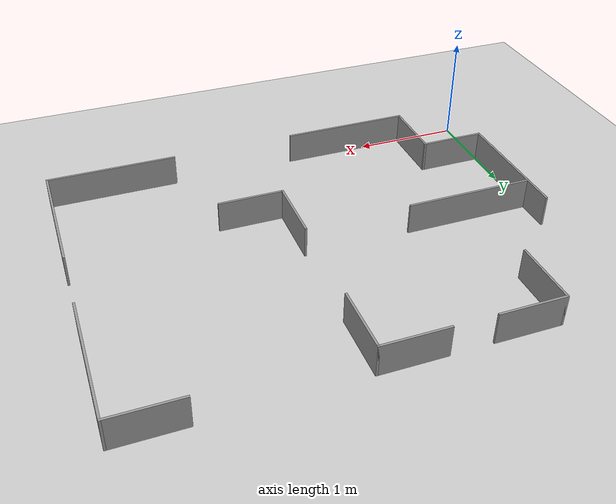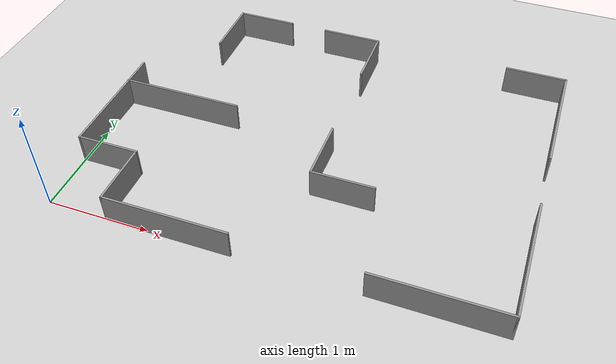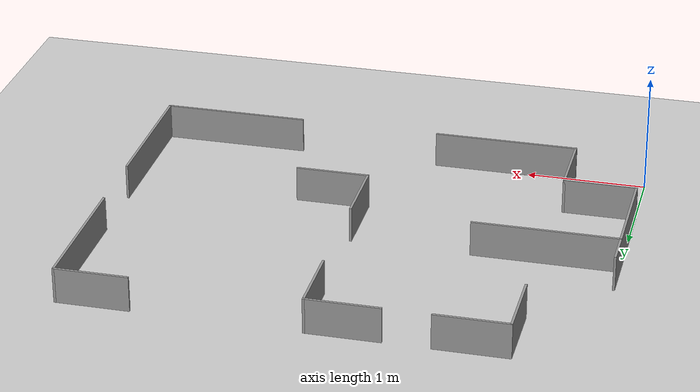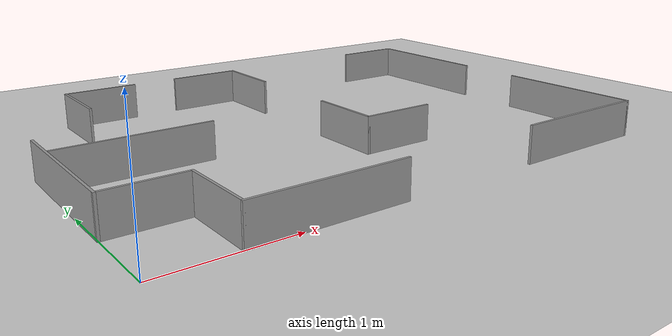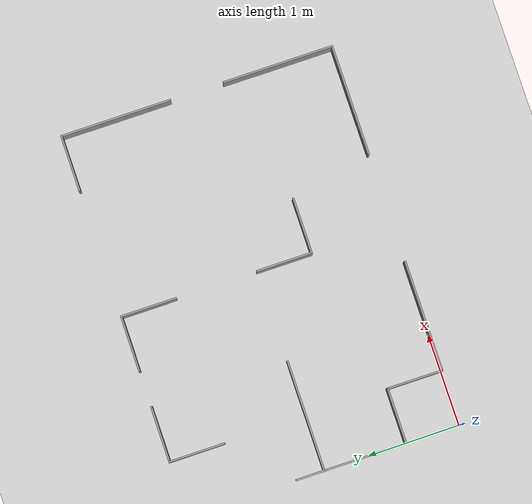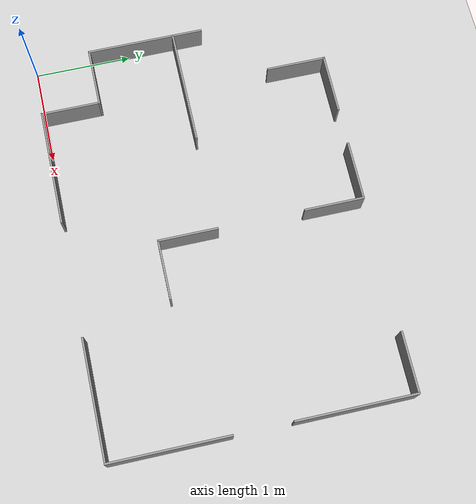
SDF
<sdf version="1.4">
  <world name="default">

    <scene>
      <ambient>0.4 0.4 0.4 1</ambient>
      <background>0.7 0.7 0.7 1</background>
      <shadows>true</shadows>
    </scene>

    <!-- A global light source -->
    <include>
      <uri>model://sun</uri>
    </include>

    <!-- A ground plane -->
    <include>
      <uri>model://ground_plane</uri>
    </include>

    <!-- project map -->
    <include>
      <uri>model://project_map</uri>
    </include>

    <physics type="ode">
      <real_time_update_rate>1000.0</real_time_update_rate>
      <max_step_size>0.001</max_step_size>
      <real_time_factor>1</real_time_factor>
      <ode>
        <solver>
          <type>quick</type>
          <iters>150</iters>
          <precon_iters>0</precon_iters>
          <sor>1.400000</sor>
          <use_dynamic_moi_rescaling>1</use_dynamic_moi_rescaling>
        </solver>
        <constraints>
          <cfm>0.00001</cfm>
          <erp>0.2</erp>
          <contact_max_correcting_vel>2000.000000</contact_max_correcting_vel>
          <contact_surface_layer>0.01000</contact_surface_layer>
        </constraints>
      </ode>
    </physics>
  </world>

</sdf>

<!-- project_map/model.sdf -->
<sdf version='1.7'>
  <model name='project_map'>
    <pose>2.1 1.5 0 0 -0 0</pose>
    <link name='Wall_0'>
      <collision name='Wall_0_Collision'>
        <geometry>
          <box>
            <size>1.22 0.02 0.3</size>
          </box>
        </geometry>
        <pose>0 0 0.15 0 -0 0</pose>
      </collision>
      <visual name='Wall_0_Visual'>
        <pose>0 0 0.15 0 -0 0</pose>
        <geometry>
          <box>
            <size>1.22 0.02 0.3</size>
          </box>
        </geometry>
        <material>
          <script>
            <uri>file://media/materials/scripts/gazebo.material</uri>
            <name>Gazebo/Grey</name>
          </script>
          <ambient>1 1 1 1</ambient>
        </material>
        <meta>
          <layer>0</layer>
        </meta>
      </visual>
      <pose>-0.9 -1.5 0 0 -0 0</pose>
    </link>
    <link name='Wall_11'>
      <collision name='Wall_11_Collision'>
        <geometry>
          <box>
            <size>1.22 0.02 0.3</size>
          </box>
        </geometry>
        <pose>0 0 0.15 0 -0 0</pose>
      </collision>
      <visual name='Wall_11_Visual'>
        <pose>0 0 0.15 0 -0 0</pose>
        <geometry>
          <box>
            <size>1.22 0.02 0.3</size>
          </box>
        </geometry>
        <material>
          <script>
            <uri>file://media/materials/scripts/gazebo.material</uri>
            <name>Gazebo/Grey</name>
          </script>
          <ambient>1 1 1 1</ambient>
        </material>
        <meta>
          <layer>0</layer>
        </meta>
      </visual>
      <pose>-1.5 -0 0 0 -0 0</pose>
    </link>
    <link name='Wall_13'>
      <collision name='Wall_13_Collision'>
        <geometry>
          <box>
            <size>0.62 0.02 0.3</size>
          </box>
        </geometry>
        <pose>0 0 0.15 0 -0 0</pose>
      </collision>
      <visual name='Wall_13_Visual'>
        <pose>0 0 0.15 0 -0 0</pose>
        <geometry>
          <box>
            <size>0.62 0.02 0.3</size>
          </box>
        </geometry>
        <material>
          <script>
            <uri>file://media/materials/scripts/gazebo.material</uri>
            <name>Gazebo/Grey</name>
          </script>
          <ambient>1 1 1 1</ambient>
        </material>
        <meta>
          <layer>0</layer>
        </meta>
      </visual>
      <pose>-1.5 1.2 0 0 -0 1.5708</pose>
    </link>
    <link name='Wall_15'>
      <collision name='Wall_15_Collision'>
        <geometry>
          <box>
            <size>0.62 0.02 0.3</size>
          </box>
        </geometry>
        <pose>0 0 0.15 0 -0 0</pose>
      </collision>
      <visual name='Wall_15_Visual'>
        <pose>0 0 0.15 0 -0 0</pose>
        <geometry>
          <box>
            <size>0.62 0.02 0.3</size>
          </box>
        </geometry>
        <material>
          <script>
            <uri>file://media/materials/scripts/gazebo.material</uri>
            <name>Gazebo/Grey</name>
          </script>
          <ambient>1 1 1 1</ambient>
        </material>
        <meta>
          <layer>0</layer>
        </meta>
      </visual>
      <pose>-1.2 1.5 0 0 -0 0</pose>
    </link>
    <link name='Wall_17'>
      <collision name='Wall_17_Collision'>
        <geometry>
          <box>
            <size>0.62 0.02 0.3</size>
          </box>
        </geometry>
        <pose>0 0 0.15 0 -0 0</pose>
      </collision>
      <visual name='Wall_17_Visual'>
        <pose>0 0 0.15 0 -0 0</pose>
        <geometry>
          <box>
            <size>0.62 0.02 0.3</size>
          </box>
        </geometry>
        <material>
          <script>
            <uri>file://media/materials/scripts/gazebo.material</uri>
            <name>Gazebo/Grey</name>
          </script>
          <ambient>1 1 1 1</ambient>
        </material>
        <meta>
          <layer>0</layer>
        </meta>
      </visual>
      <pose>-0.2 1.5 0 0 -0 0</pose>
    </link>
    <link name='Wall_19'>
      <collision name='Wall_19_Collision'>
        <geometry>
          <box>
            <size>0.62 0.02 0.3</size>
          </box>
        </geometry>
        <pose>0 0 0.15 0 -0 0</pose>
      </collision>
      <visual name='Wall_19_Visual'>
        <pose>0 0 0.15 0 -0 0</pose>
        <geometry>
          <box>
            <size>0.62 0.02 0.3</size>
          </box>
        </geometry>
        <material>
          <script>
            <uri>file://media/materials/scripts/gazebo.material</uri>
            <name>Gazebo/Grey</name>
          </script>
          <ambient>1 1 1 1</ambient>
        </material>
        <meta>
          <layer>0</layer>
        </meta>
      </visual>
      <pose>0.1 1.2 0 0 -0 -1.5708</pose>
    </link>
    <link name='Wall_2'>
      <collision name='Wall_2_Collision'>
        <geometry>
          <box>
            <size>1.22 0.02 0.3</size>
          </box>
        </geometry>
        <pose>0 0 0.15 0 -0 0</pose>
      </collision>
      <visual name='Wall_2_Visual'>
        <pose>0 0 0.15 0 -0 0</pose>
        <geometry>
          <box>
            <size>1.22 0.02 0.3</size>
          </box>
        </geometry>
        <material>
          <script>
            <uri>file://media/materials/scripts/gazebo.material</uri>
            <name>Gazebo/Grey</name>
          </script>
          <ambient>1 1 1 1</ambient>
        </material>
        <meta>
          <layer>0</layer>
        </meta>
      </visual>
      <pose>1.5 -1.5 0 0 -0 0</pose>
    </link>
    <link name='Wall_21'>
      <collision name='Wall_21_Collision'>
        <geometry>
          <box>
            <size>0.62 0.02 0.3</size>
          </box>
        </geometry>
        <pose>0 0 0.15 0 -0 0</pose>
      </collision>
      <visual name='Wall_21_Visual'>
        <pose>0 0 0.15 0 -0 0</pose>
        <geometry>
          <box>
            <size>0.62 0.02 0.3</size>
          </box>
        </geometry>
        <material>
          <script>
            <uri>file://media/materials/scripts/gazebo.material</uri>
            <name>Gazebo/Grey</name>
          </script>
          <ambient>1 1 1 1</ambient>
        </material>
        <meta>
          <layer>0</layer>
        </meta>
      </visual>
      <pose>0.1 -0.3 0 0 -0 -1.5708</pose>
    </link>
    <link name='Wall_23'>
      <collision name='Wall_23_Collision'>
        <geometry>
          <box>
            <size>0.62 0.02 0.3</size>
          </box>
        </geometry>
        <pose>0 0 0.15 0 -0 0</pose>
      </collision>
      <visual name='Wall_23_Visual'>
        <pose>0 0 0.15 0 -0 0</pose>
        <geometry>
          <box>
            <size>0.62 0.02 0.3</size>
          </box>
        </geometry>
        <material>
          <script>
            <uri>file://media/materials/scripts/gazebo.material</uri>
            <name>Gazebo/Grey</name>
          </script>
          <ambient>1 1 1 1</ambient>
        </material>
        <meta>
          <layer>0</layer>
        </meta>
      </visual>
      <pose>0.4 -0.6 0 0 -0 0</pose>
    </link>
    <link name='Wall_25'>
      <collision name='Wall_25_Collision'>
        <geometry>
          <box>
            <size>0.62 0.02 0.3</size>
          </box>
        </geometry>
        <pose>0 0 0.15 0 -0 0</pose>
      </collision>
      <visual name='Wall_25_Visual'>
        <pose>0 0 0.15 0 -0 0</pose>
        <geometry>
          <box>
            <size>0.62 0.02 0.3</size>
          </box>
        </geometry>
        <material>
          <script>
            <uri>file://media/materials/scripts/gazebo.material</uri>
            <name>Gazebo/Grey</name>
          </script>
          <ambient>1 1 1 1</ambient>
        </material>
        <meta>
          <layer>0</layer>
        </meta>
      </visual>
      <pose>1.8 1.5 0 0 -0 3.14159</pose>
    </link>
    <link name='Wall_27'>
      <collision name='Wall_27_Collision'>
        <geometry>
          <box>
            <size>1.22 0.02 0.3</size>
          </box>
        </geometry>
        <pose>0 0 0.15 0 -0 0</pose>
      </collision>
      <visual name='Wall_27_Visual'>
        <pose>0 0 0.15 0 -0 0</pose>
        <geometry>
          <box>
            <size>1.22 0.02 0.3</size>
          </box>
        </geometry>
        <material>
          <script>
            <uri>file://media/materials/scripts/gazebo.material</uri>
            <name>Gazebo/Grey</name>
          </script>
          <ambient>1 1 1 1</ambient>
        </material>
        <meta>
          <layer>0</layer>
        </meta>
      </visual>
      <pose>2.1 0.9 0 0 -0 -1.5708</pose>
    </link>
    <link name='Wall_29'>
      <collision name='Wall_29_Collision'>
        <geometry>
          <box>
            <size>1.22 0.02 0.3</size>
          </box>
        </geometry>
        <pose>0 0 0.15 0 -0 0</pose>
      </collision>
      <visual name='Wall_29_Visual'>
        <pose>0 0 0.15 0 -0 0</pose>
        <geometry>
          <box>
            <size>1.22 0.02 0.3</size>
          </box>
        </geometry>
        <material>
          <script>
            <uri>file://media/materials/scripts/gazebo.material</uri>
            <name>Gazebo/Grey</name>
          </script>
          <ambient>1 1 1 1</ambient>
        </material>
        <meta>
          <layer>0</layer>
        </meta>
      </visual>
      <pose>2.1 -0.9 0 0 -0 1.5708</pose>
    </link>
    <link name='Wall_5'>
      <collision name='Wall_5_Collision'>
        <geometry>
          <box>
            <size>1.22 0.02 0.3</size>
          </box>
        </geometry>
        <pose>0 0 0.15 0 -0 0</pose>
      </collision>
      <visual name='Wall_5_Visual'>
        <pose>0 0 0.15 0 -0 0</pose>
        <geometry>
          <box>
            <size>1.22 0.02 0.3</size>
          </box>
        </geometry>
        <material>
          <script>
            <uri>file://media/materials/scripts/gazebo.material</uri>
            <name>Gazebo/Grey</name>
          </script>
          <ambient>1 1 1 1</ambient>
        </material>
        <meta>
          <layer>0</layer>
        </meta>
      </visual>
      <pose>-2.1 -0.3 0 0 -0 1.5708</pose>
    </link>
    <link name='Wall_7'>
      <collision name='Wall_7_Collision'>
        <geometry>
          <box>
            <size>0.62 0.02 0.3</size>
          </box>
        </geometry>
        <pose>0 0 0.15 0 -0 0</pose>
      </collision>
      <visual name='Wall_7_Visual'>
        <pose>0 0 0.15 0 -0 0</pose>
        <geometry>
          <box>
            <size>0.62 0.02 0.3</size>
          </box>
        </geometry>
        <material>
          <script>
            <uri>file://media/materials/scripts/gazebo.material</uri>
            <name>Gazebo/Grey</name>
          </script>
          <ambient>1 1 1 1</ambient>
        </material>
        <meta>
          <layer>0</layer>
        </meta>
      </visual>
      <pose>-1.5 -1.2 0 0 -0 1.5708</pose>
    </link>
    <link name='Wall_9'>
      <collision name='Wall_9_Collision'>
        <geometry>
          <box>
            <size>0.62 0.02 0.3</size>
          </box>
        </geometry>
        <pose>0 0 0.15 0 -0 0</pose>
      </collision>
      <visual name='Wall_9_Visual'>
        <pose>0 0 0.15 0 -0 0</pose>
        <geometry>
          <box>
            <size>0.62 0.02 0.3</size>
          </box>
        </geometry>
        <material>
          <script>
            <uri>file://media/materials/scripts/gazebo.material</uri>
            <name>Gazebo/Grey</name>
          </script>
          <ambient>1 1 1 1</ambient>
        </material>
        <meta>
          <layer>0</layer>
        </meta>
      </visual>
      <pose>-1.8 -0.9 0 0 -0 3.14159</pose>
    </link>
    <static>1</static>
  </model>
</sdf>
